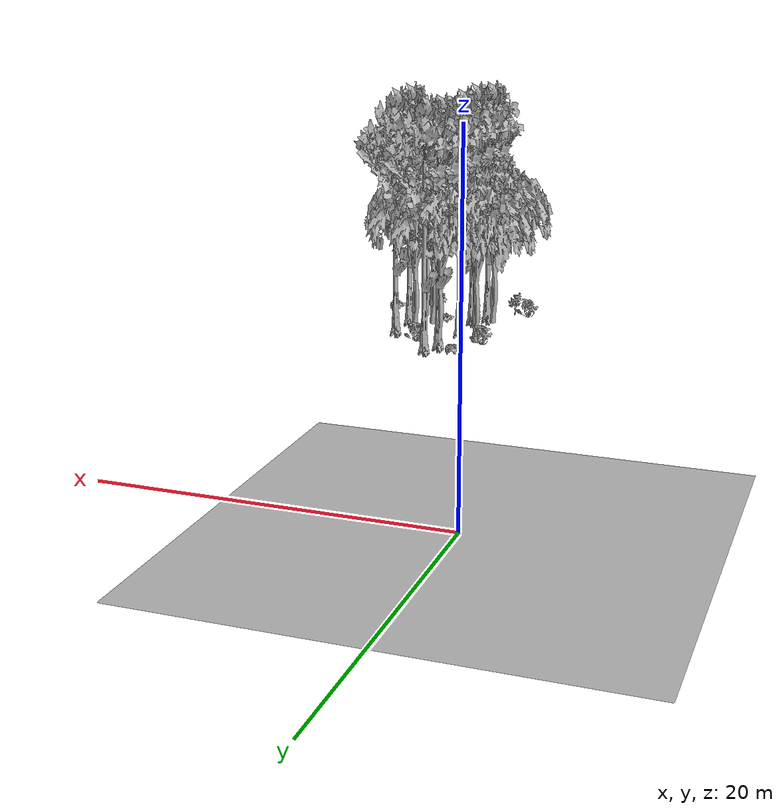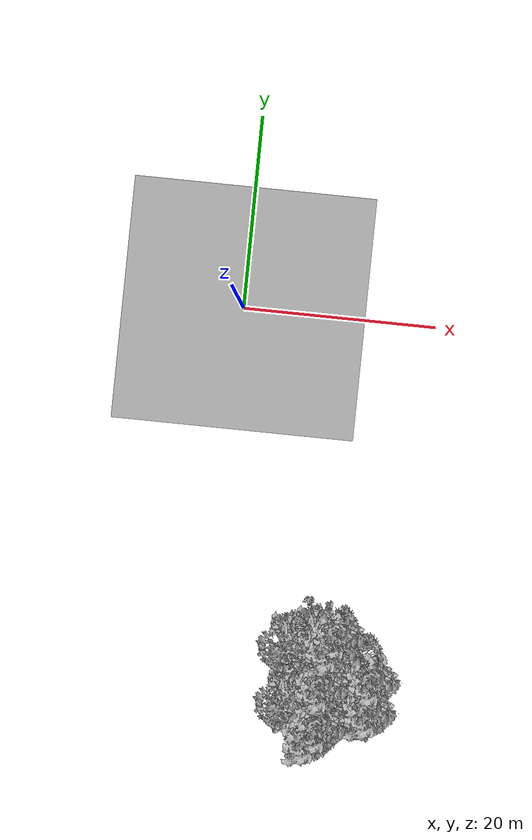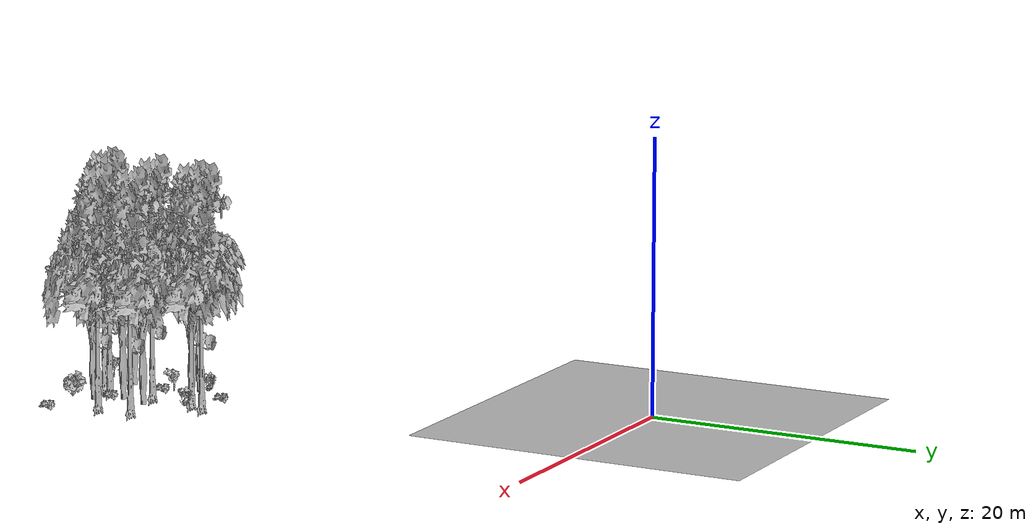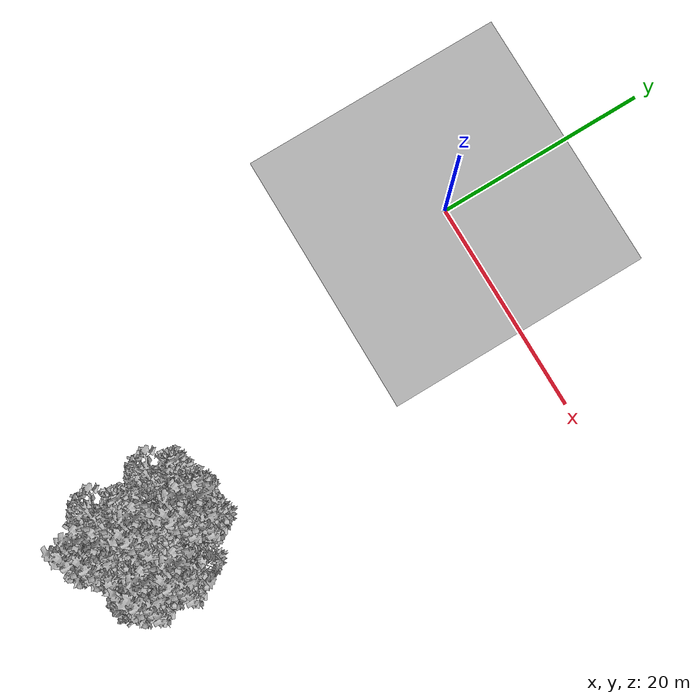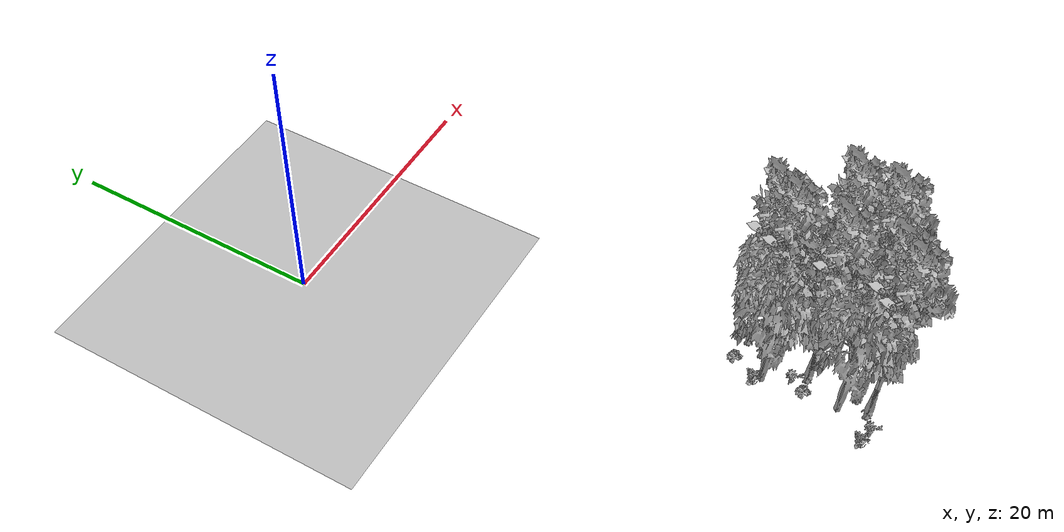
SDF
<sdf version="1.7">
 <world name="default">
  <model name="ground_plane">
   <static>1</static>
   <link name="link">
    <collision name="collision">
     <pose>-50 0 0 0 -0 0</pose>
     <geometry><plane><normal>0 0 1</normal><size>80 80</size></plane></geometry>
     <surface><contact><ode><min_depth>0.01</min_depth><max_vel>0</max_vel></ode></contact></surface>
    </collision>
    <visual name="grass">
     <cast_shadows>0</cast_shadows>
     <geometry>
      <mesh>
       <scale>0.46714285714285714 0.46714285714285714 0.1</scale>
       <uri>file://grass_plane/meshes/grass_plane.dae</uri>
      </mesh>
     </geometry>
    </visual>
   </link>
  </model>
  <model name="Tree 32">
   <static>1</static>
   <pose>11.33506674609081 -31.073006862445787 0 1.57079 -0 0</pose>
   <link name="link">
    <collision name="collision">
     <geometry><mesh><scale>3.5 5 3.5</scale><uri>model://tree_9/meshes/tree_9.obj</uri></mesh></geometry>
    </collision>
    <visual name="visual">
     <geometry><mesh><scale>3.5 5 3.5</scale><uri>model://tree_9/meshes/tree_9.obj</uri></mesh></geometry>
    </visual>
   </link>
  </model>
  <model name="Tree 60">
   <static>1</static>
   <pose>14.243299052388643 -37.41890201293516 0 1.57079 -0 0</pose>
   <link name="link">
    <collision name="collision">
     <geometry><mesh><scale>3.5 5 3.5</scale><uri>model://tree_2/meshes/tree_2.obj</uri></mesh></geometry>
    </collision>
    <visual name="visual">
     <geometry><mesh><scale>3.5 5 3.5</scale><uri>model://tree_2/meshes/tree_2.obj</uri></mesh></geometry>
    </visual>
   </link>
  </model>
  <model name="Tree 62">
   <static>1</static>
   <pose>15.384697947202213 -33.61445784595929 0 1.57079 -0 0</pose>
   <link name="link">
    <collision name="collision">
     <geometry><mesh><scale>3.5 5 3.5</scale><uri>model://tree_9/meshes/tree_9.obj</uri></mesh></geometry>
    </collision>
    <visual name="visual">
     <geometry><mesh><scale>3.5 5 3.5</scale><uri>model://tree_9/meshes/tree_9.obj</uri></mesh></geometry>
    </visual>
   </link>
  </model>
  <model name="Tree 84">
   <static>1</static>
   <pose>10.92635274964264 -34.60364811709452 0 1.57079 -0 0</pose>
   <link name="link">
    <collision name="collision">
     <geometry><mesh><scale>3.5 5 3.5</scale><uri>model://tree_9/meshes/tree_9.obj</uri></mesh></geometry>
    </collision>
    <visual name="visual">
     <geometry><mesh><scale>3.5 5 3.5</scale><uri>model://tree_9/meshes/tree_9.obj</uri></mesh></geometry>
    </visual>
   </link>
  </model>
  <model name="Tree 113">
   <static>1</static>
   <pose>11.949702141584346 -29.82091732379164 0 1.57079 -0 0</pose>
   <link name="link">
    <collision name="collision">
     <geometry><mesh><scale>3.5 5 3.5</scale><uri>model://tree_9/meshes/tree_9.obj</uri></mesh></geometry>
    </collision>
    <visual name="visual">
     <geometry><mesh><scale>3.5 5 3.5</scale><uri>model://tree_9/meshes/tree_9.obj</uri></mesh></geometry>
    </visual>
   </link>
  </model>
  <model name="Tree 133">
   <static>1</static>
   <pose>8.79535202439218 -31.923949054609217 0 1.57079 -0 0</pose>
   <link name="link">
    <collision name="collision">
     <geometry><mesh><scale>3.5 5 3.5</scale><uri>model://tree_2/meshes/tree_2.obj</uri></mesh></geometry>
    </collision>
    <visual name="visual">
     <geometry><mesh><scale>3.5 5 3.5</scale><uri>model://tree_2/meshes/tree_2.obj</uri></mesh></geometry>
    </visual>
   </link>
  </model>
  <model name="Tree 155">
   <static>1</static>
   <pose>13.787674304860005 -33.52618719401224 0 1.57079 -0 0</pose>
   <link name="link">
    <collision name="collision">
     <geometry><mesh><scale>3.5 5 3.5</scale><uri>model://tree_2/meshes/tree_2.obj</uri></mesh></geometry>
    </collision>
    <visual name="visual">
     <geometry><mesh><scale>3.5 5 3.5</scale><uri>model://tree_2/meshes/tree_2.obj</uri></mesh></geometry>
    </visual>
   </link>
  </model>
  <model name="Tree 167">
   <static>1</static>
   <pose>11.166875663631835 -31.076915457646244 0 1.57079 -0 0</pose>
   <link name="link">
    <collision name="collision">
     <geometry><mesh><scale>3.5 5 3.5</scale><uri>model://tree_2/meshes/tree_2.obj</uri></mesh></geometry>
    </collision>
    <visual name="visual">
     <geometry><mesh><scale>3.5 5 3.5</scale><uri>model://tree_2/meshes/tree_2.obj</uri></mesh></geometry>
    </visual>
   </link>
  </model>
  <model name="Tree 203">
   <static>1</static>
   <pose>13.136449392070382 -35.6176126166269 0 1.57079 -0 0</pose>
   <link name="link">
    <collision name="collision">
     <geometry><mesh><scale>3.5 5 3.5</scale><uri>model://tree_2/meshes/tree_2.obj</uri></mesh></geometry>
    </collision>
    <visual name="visual">
     <geometry><mesh><scale>3.5 5 3.5</scale><uri>model://tree_2/meshes/tree_2.obj</uri></mesh></geometry>
    </visual>
   </link>
  </model>
  <model name="Tree 216">
   <static>1</static>
   <pose>11.05437628438819 -38.155715161935845 0 1.57079 -0 0</pose>
   <link name="link">
    <collision name="collision">
     <geometry><mesh><scale>3.5 5 3.5</scale><uri>model://tree_9/meshes/tree_9.obj</uri></mesh></geometry>
    </collision>
    <visual name="visual">
     <geometry><mesh><scale>3.5 5 3.5</scale><uri>model://tree_9/meshes/tree_9.obj</uri></mesh></geometry>
    </visual>
   </link>
  </model>
  <model name="Tree 219">
   <static>1</static>
   <pose>15.318030362356701 -36.383814361931826 0 1.57079 -0 0</pose>
   <link name="link">
    <collision name="collision">
     <geometry><mesh><scale>3.5 5 3.5</scale><uri>model://tree_9/meshes/tree_9.obj</uri></mesh></geometry>
    </collision>
    <visual name="visual">
     <geometry><mesh><scale>3.5 5 3.5</scale><uri>model://tree_9/meshes/tree_9.obj</uri></mesh></geometry>
    </visual>
   </link>
  </model>
  <model name="Tree 255">
   <static>1</static>
   <pose>9.063300453567628 -37.286611706141315 0 1.57079 -0 0</pose>
   <link name="link">
    <collision name="collision">
     <geometry><mesh><scale>3.5 5 3.5</scale><uri>model://tree_2/meshes/tree_2.obj</uri></mesh></geometry>
    </collision>
    <visual name="visual">
     <geometry><mesh><scale>3.5 5 3.5</scale><uri>model://tree_2/meshes/tree_2.obj</uri></mesh></geometry>
    </visual>
   </link>
  </model>
  <model name="Tree 471">
   <static>1</static>
   <pose>10.165047490530178 -39.167267098391704 0 1.57079 -0 0</pose>
   <link name="link">
    <collision name="collision">
     <geometry><mesh><scale>3.5 5 3.5</scale><uri>model://tree_9/meshes/tree_9.obj</uri></mesh></geometry>
    </collision>
    <visual name="visual">
     <geometry><mesh><scale>3.5 5 3.5</scale><uri>model://tree_9/meshes/tree_9.obj</uri></mesh></geometry>
    </visual>
   </link>
  </model>
  <model name="Bush 64">
   <static>1</static>
   <pose>17.299780483523428 -39.3838958472533 0 1.57079 -0 0</pose>
   <link name="link">
    <collision name="collision">
     <geometry><mesh><scale>2 2 2</scale><uri>model://bush_2/meshes/bush_2.obj</uri></mesh></geometry>
     <surface><contact><collide_without_contact>false</collide_without_contact></contact></surface>
    </collision>
    <visual name="visual">
     <geometry><mesh><scale>2 2 2</scale><uri>model://bush_2/meshes/bush_2.obj</uri></mesh></geometry>
    </visual>
   </link>
  </model>
  <model name="Bush 132">
   <static>1</static>
   <pose>9.748321643174286 -29.58185996400787 0 1.57079 -0 0</pose>
   <link name="link">
    <collision name="collision">
     <geometry><mesh><scale>2 2 2</scale><uri>model://bush_2/meshes/bush_2.obj</uri></mesh></geometry>
     <surface><contact><collide_without_contact>false</collide_without_contact></contact></surface>
    </collision>
    <visual name="visual">
     <geometry><mesh><scale>2 2 2</scale><uri>model://bush_2/meshes/bush_2.obj</uri></mesh></geometry>
    </visual>
   </link>
  </model>
  <model name="Bush 177">
   <static>1</static>
   <pose>12.715341472289715 -37.03005715306887 0 1.57079 -0 0</pose>
   <link name="link">
    <collision name="collision">
     <geometry><mesh><scale>2 2 2</scale><uri>model://bush_2/meshes/bush_2.obj</uri></mesh></geometry>
     <surface><contact><collide_without_contact>false</collide_without_contact></contact></surface>
    </collision>
    <visual name="visual">
     <geometry><mesh><scale>2 2 2</scale><uri>model://bush_2/meshes/bush_2.obj</uri></mesh></geometry>
    </visual>
   </link>
  </model>
  <model name="Bush 219">
   <static>1</static>
   <pose>9.493091287579766 -33.67917332332813 0 1.57079 -0 0</pose>
   <link name="link">
    <collision name="collision">
     <geometry><mesh><scale>2 2 2</scale><uri>model://bush_5/meshes/bush_5.obj</uri></mesh></geometry>
     <surface><contact><collide_without_contact>false</collide_without_contact></contact></surface>
    </collision>
    <visual name="visual">
     <geometry><mesh><scale>2 2 2</scale><uri>model://bush_5/meshes/bush_5.obj</uri></mesh></geometry>
    </visual>
   </link>
  </model>
  <model name="Bush 305">
   <static>1</static>
   <pose>7.13401468158272 -39.58498762401513 0 1.57079 -0 0</pose>
   <link name="link">
    <collision name="collision">
     <geometry><mesh><scale>2 2 2</scale><uri>model://bush_4/meshes/bush_4.obj</uri></mesh></geometry>
     <surface><contact><collide_without_contact>false</collide_without_contact></contact></surface>
    </collision>
    <visual name="visual">
     <geometry><mesh><scale>2 2 2</scale><uri>model://bush_4/meshes/bush_4.obj</uri></mesh></geometry>
    </visual>
   </link>
  </model>
  <model name="Bush 309">
   <static>1</static>
   <pose>14.204280215625609 -39.280735676764714 0 1.57079 -0 0</pose>
   <link name="link">
    <collision name="collision">
     <geometry><mesh><scale>2 2 2</scale><uri>model://bush_1/meshes/bush_1.obj</uri></mesh></geometry>
     <surface><contact><collide_without_contact>false</collide_without_contact></contact></surface>
    </collision>
    <visual name="visual">
     <geometry><mesh><scale>2 2 2</scale><uri>model://bush_1/meshes/bush_1.obj</uri></mesh></geometry>
    </visual>
   </link>
  </model>
  <model name="Bush 367">
   <static>1</static>
   <pose>12.77584739959213 -30.720532792320768 0 1.57079 -0 0</pose>
   <link name="link">
    <collision name="collision">
     <geometry><mesh><scale>2 2 2</scale><uri>model://bush_4/meshes/bush_4.obj</uri></mesh></geometry>
     <surface><contact><collide_without_contact>false</collide_without_contact></contact></surface>
    </collision>
    <visual name="visual">
     <geometry><mesh><scale>2 2 2</scale><uri>model://bush_4/meshes/bush_4.obj</uri></mesh></geometry>
    </visual>
   </link>
  </model>
  <model name="Bush 379">
   <static>1</static>
   <pose>9.333523955107339 -34.78458169158942 0 1.57079 -0 0</pose>
   <link name="link">
    <collision name="collision">
     <geometry><mesh><scale>2 2 2</scale><uri>model://bush_2/meshes/bush_2.obj</uri></mesh></geometry>
     <surface><contact><collide_without_contact>false</collide_without_contact></contact></surface>
    </collision>
    <visual name="visual">
     <geometry><mesh><scale>2 2 2</scale><uri>model://bush_2/meshes/bush_2.obj</uri></mesh></geometry>
    </visual>
   </link>
  </model>
  <model name="Bush 385">
   <static>1</static>
   <pose>8.285502711062648 -31.499624377977398 0 1.57079 -0 0</pose>
   <link name="link">
    <collision name="collision">
     <geometry><mesh><scale>2 2 2</scale><uri>model://bush_4/meshes/bush_4.obj</uri></mesh></geometry>
     <surface><contact><collide_without_contact>false</collide_without_contact></contact></surface>
    </collision>
    <visual name="visual">
     <geometry><mesh><scale>2 2 2</scale><uri>model://bush_4/meshes/bush_4.obj</uri></mesh></geometry>
    </visual>
   </link>
  </model>
  <model name="Bush 552">
   <static>1</static>
   <pose>8.15983776617118 -39.69225366445934 0 1.57079 -0 0</pose>
   <link name="link">
    <collision name="collision">
     <geometry><mesh><scale>2 2 2</scale><uri>model://bush_5/meshes/bush_5.obj</uri></mesh></geometry>
     <surface><contact><collide_without_contact>false</collide_without_contact></contact></surface>
    </collision>
    <visual name="visual">
     <geometry><mesh><scale>2 2 2</scale><uri>model://bush_5/meshes/bush_5.obj</uri></mesh></geometry>
    </visual>
   </link>
  </model>
 </world>
</sdf>
